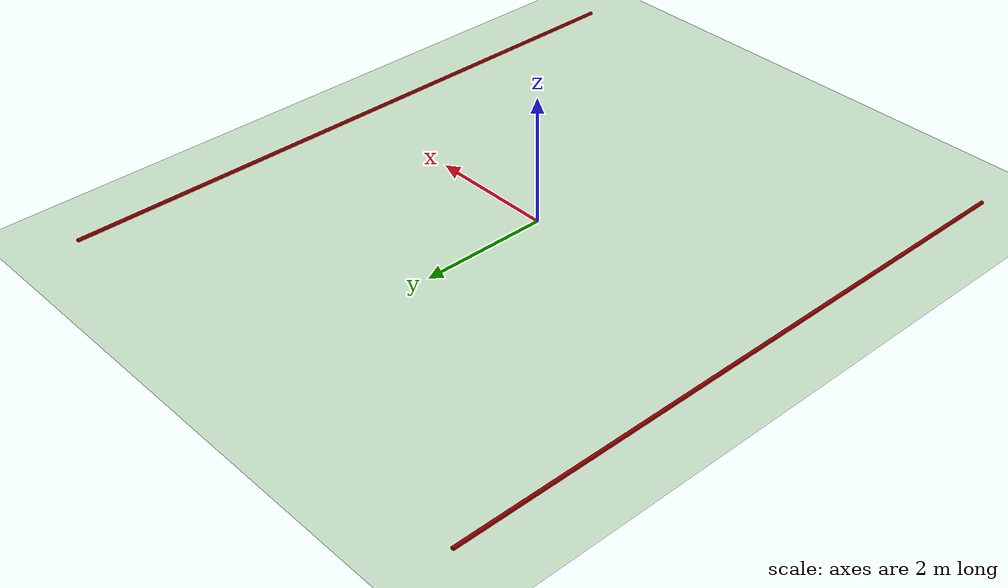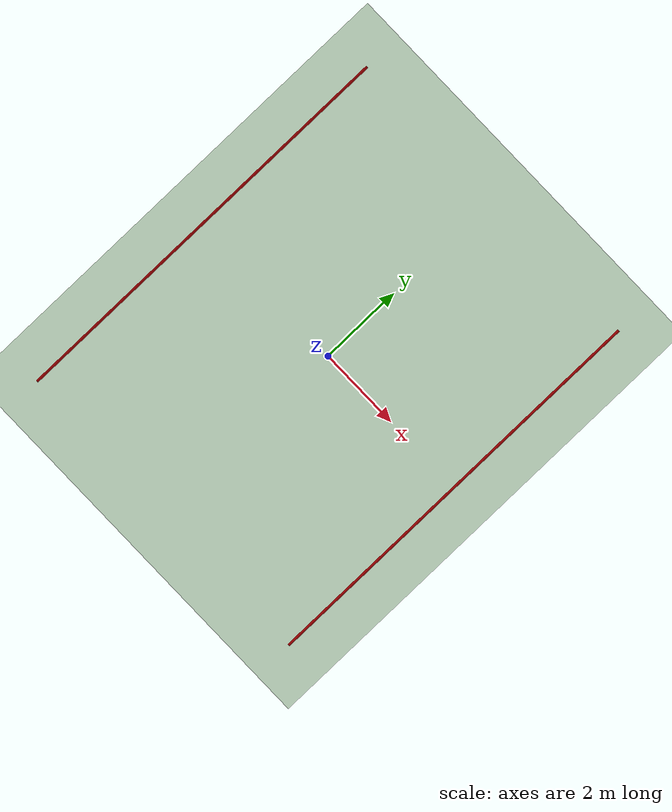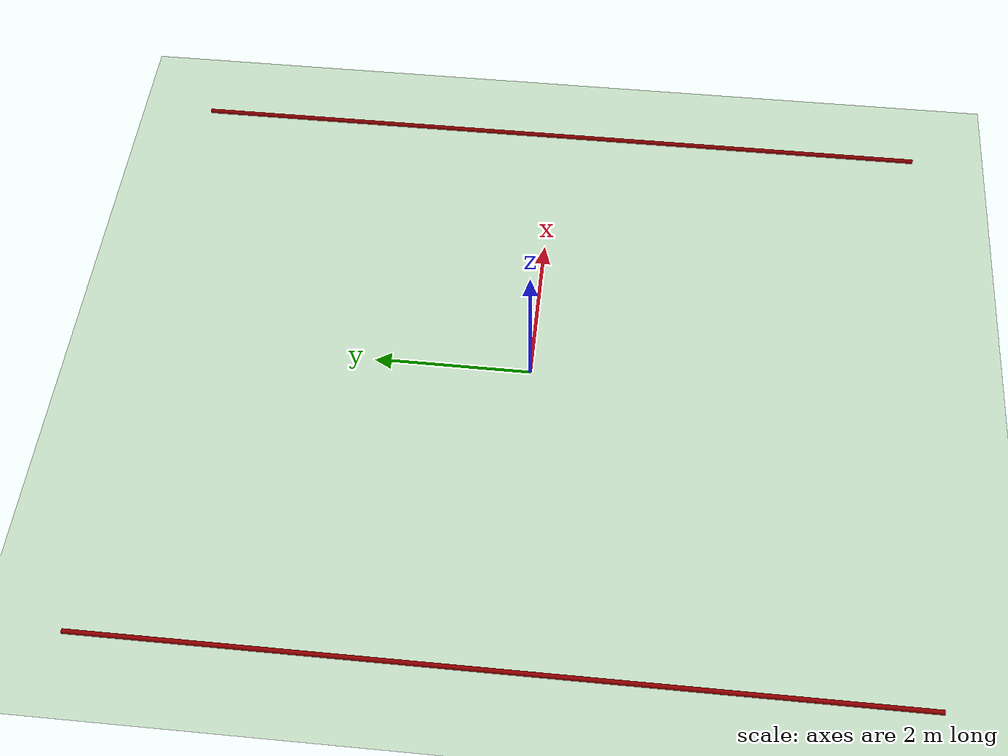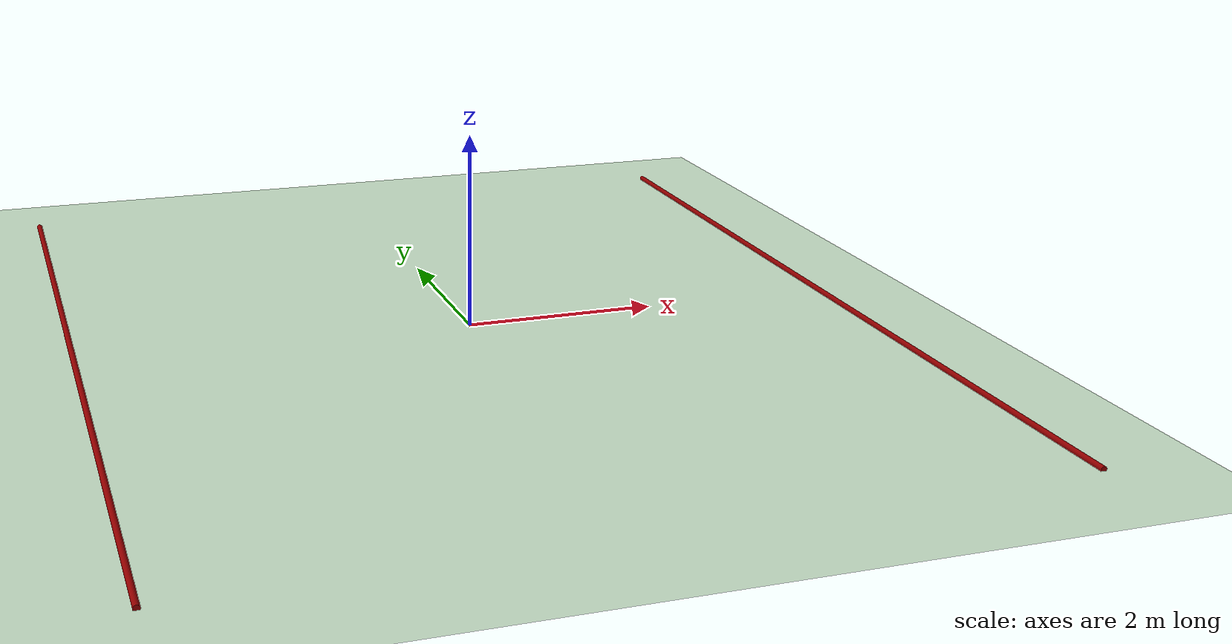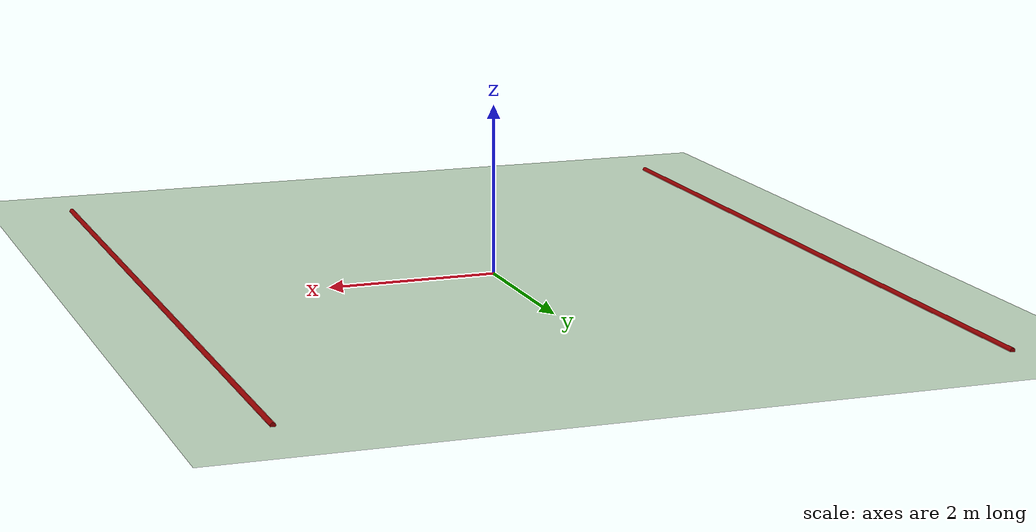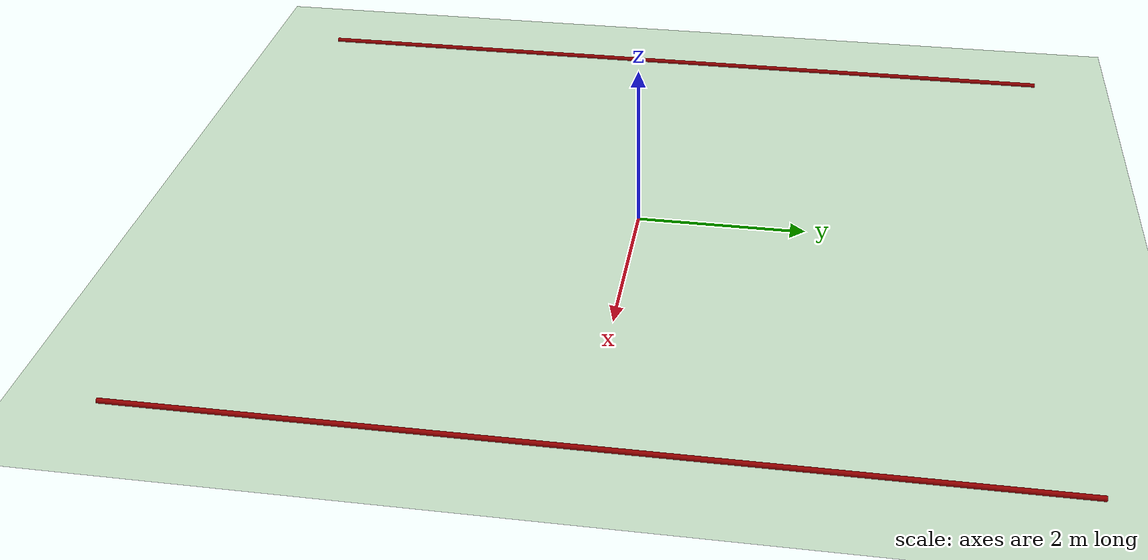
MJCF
<mujoco model="mutiagent_world">
  <compiler angle="degree" coordinate="local" inertiafromgeom="true"/>
  <option integrator="RK4" timestep="0.003" solver="PGS" iterations="1000"/>
  <default>
    <joint armature="1" damping="1" limited="true"/>
  </default>
  <visual>
    <headlight ambient=".1 .1 .1" diffuse=".6 .6 .6" specular="0.3 0.3 0.3"/>
    <map znear=".01"/>
    <quality shadowsize="16384"/>
  </visual>

  <asset>
    <texture builtin="gradient" height="100" rgb1=".4 .5 .6" rgb2="0 0 0" type="skybox" width="100" />
    <texture builtin="flat" height="1278" mark="cross" markrgb="0 0 0" name="texgeom" random="0.01" rgb1="0.8 0.6 0.4" rgb2="1 1 1" type="cube" width="127" />
    <texture builtin="checker" height="100" name="texplane" rgb1="0 0 0" rgb2="0.8 0.8 0.8" type="2d" width="100" />
    <material name="geom" texture="texgeom" texuniform="true" />
    <texture name="MatPlane" type="2d" builtin="checker" rgb1=".4 .4 .4" rgb2=".4 .4 .4" width="300" height="300" mark="edge" markrgb="0.1 0.1 0.1" />
    <material name="MatPlane" texture="MatPlane" texrepeat="2 2" texuniform="true" reflectance=".2" />
  </asset>
  <worldbody>
    <light cutoff="100" diffuse="1 1 1" dir="-0 0 -1.3" directional="true" exponent="1" pos="0 0 1.3" specular=".1 .1 .1"/>
    <geom contype="1" conaffinity="1" friction="1 .1 .1" condim="3" material="MatPlane" name="floor" pos="0 0 0" rgba="0.8 0.9 0.8 1" size="20 20 0.125" type="plane"/>
    <geom fromto="4 -5 0  4 +5 0" name="rightgoal" rgba="0.6 0.0 0.0 1" size=".03" type="cylinder"/>
    <geom fromto="-4 -5 0  -4 +5 0" name="leftgoal" rgba="0.6 0.0 0.0 1" size=".03" type="cylinder"/>
  </worldbody>
</mujoco>
